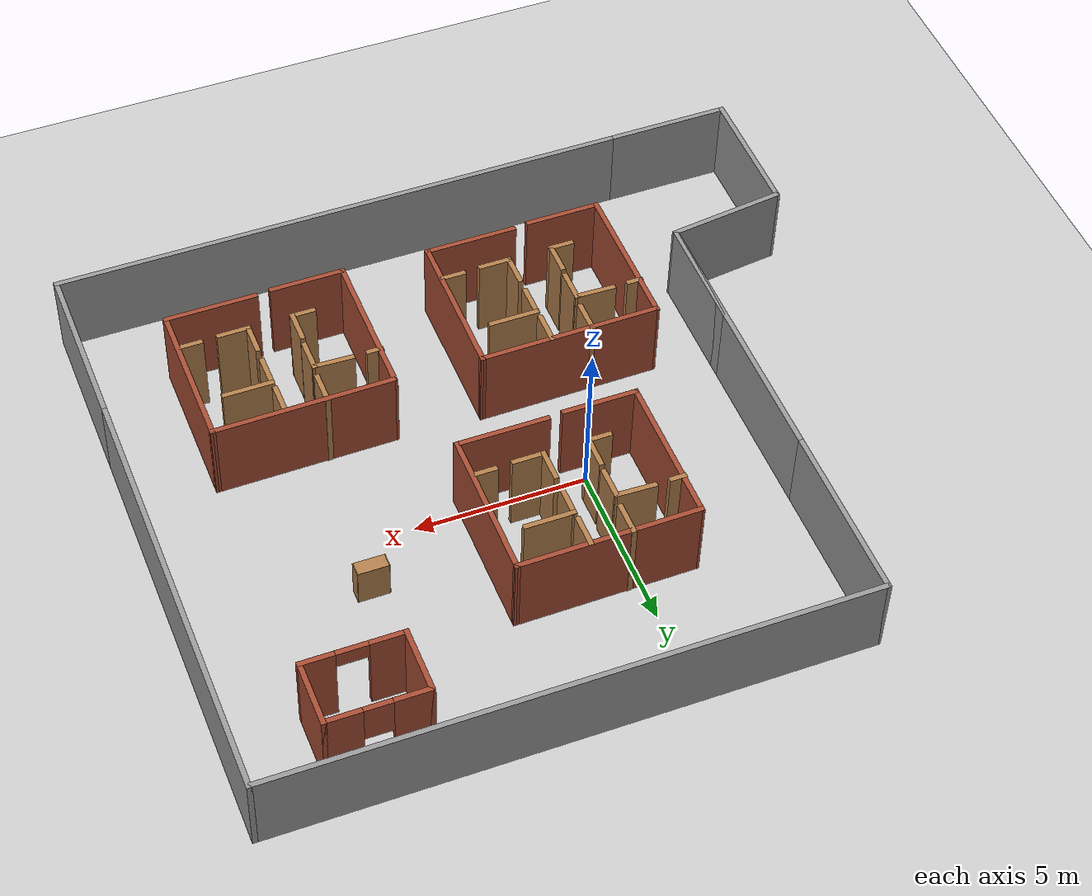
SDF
<sdf version="1.7">
 <world name="default">
  <light name="sun" type="directional">
   <pose>0 0 10 0 -0 0</pose>
   <diffuse>0.8 0.8 0.8 1</diffuse>
   <specular>0.2 0.2 0.2 1</specular>
   <attenuation>
    <range>1000</range>
    <constant>0.9</constant>
    <linear>0.01</linear>
    <quadratic>0.001</quadratic>
   </attenuation>
   <direction>-0.5 0.1 -0.9</direction>
   <spot><inner_angle>0</inner_angle><outer_angle>0</outer_angle><falloff>0</falloff></spot>
  </light>
  <model name="ground_plane">
   <static>1</static>
   <link name="link">
    <collision name="collision">
     <geometry><plane><normal>0 0 1</normal><size>100 100</size></plane></geometry>
     <surface><friction><ode><mu>100</mu><mu2>50</mu2></ode></friction></surface>
    </collision>
    <visual name="visual">
     <cast_shadows>0</cast_shadows>
     <geometry><plane><normal>0 0 1</normal><size>100 100</size></plane></geometry>
     <material>
      <script><uri>file://media/materials/scripts/gazebo.material</uri><name>Gazebo/Grey</name></script>
     </material>
    </visual>
   </link>
  </model>
  <gravity>0 0 -9.8</gravity>
  <magnetic_field>6e-06 2.3e-05 -4.2e-05</magnetic_field>
  <atmosphere type="adiabatic"/>
  <physics type="ode">
   <max_step_size>0.001</max_step_size>
   <real_time_factor>1</real_time_factor>
   <real_time_update_rate>1000</real_time_update_rate>
  </physics>
  <scene><ambient>0.4 0.4 0.4 1</ambient><background>0.7 0.7 0.7 1</background><shadows>1</shadows></scene>
  <audio><device>default</device></audio>
  <spherical_coordinates>
   <surface_model>EARTH_WGS84</surface_model>
   <latitude_deg>0</latitude_deg>
   <longitude_deg>0</longitude_deg>
   <elevation>0</elevation>
   <heading_deg>0</heading_deg>
  </spherical_coordinates>
  <model name="my_world">
   <pose>1.83197 -1.06771 0 0 -0 0</pose>
   <link name="Wall_1">
    <collision name="Wall_1_Collision">
     <geometry><box><size>3.5 0.15 2.5</size></box></geometry>
     <pose>0 0 1.25 0 -0 0</pose>
    </collision>
    <visual name="Wall_1_Visual">
     <pose>0 0 1.25 0 -0 0</pose>
     <geometry><box><size>3.5 0.15 2.5</size></box></geometry>
     <material>
      <script><uri>file://media/materials/scripts/gazebo.material</uri><name>Gazebo/Grey</name></script>
      <ambient>1 1 1 1</ambient>
     </material>
     <meta><layer>0</layer></meta>
    </visual>
    <pose>-6.87082 -2.925 0 0 -0 -1.5708</pose>
   </link>
   <link name="Wall_10">
    <collision name="Wall_10_Collision">
     <geometry><box><size>3.5238 0.15 2.5</size></box></geometry>
     <pose>0 0 1.25 0 -0 0</pose>
    </collision>
    <visual name="Wall_10_Visual">
     <pose>0 0 1.25 0 -0 0</pose>
     <geometry><box><size>3.5238 0.15 2.5</size></box></geometry>
     <material>
      <script><uri>file://media/materials/scripts/gazebo.material</uri><name>Gazebo/Grey</name></script>
      <ambient>1 1 1 1</ambient>
     </material>
     <meta><layer>0</layer></meta>
    </visual>
    <pose>-8.54582 -4.8 0 0 -0 0.11884</pose>
   </link>
   <link name="Wall_2">
    <collision name="Wall_2_Collision">
     <geometry><box><size>8.5 0.15 2.5</size></box></geometry>
     <pose>0 0 1.25 0 -0 0</pose>
    </collision>
    <visual name="Wall_2_Visual">
     <pose>0 0 1.25 0 -0 0</pose>
     <geometry><box><size>8.5 0.15 2.5</size></box></geometry>
     <material>
      <script><uri>file://media/materials/scripts/gazebo.material</uri><name>Gazebo/Grey</name></script>
      <ambient>1 1 1 1</ambient>
     </material>
     <meta><layer>0</layer></meta>
    </visual>
    <pose>-6.87082 -0.425 0 0 -0 1.5708</pose>
   </link>
   <link name="Wall_3">
    <collision name="Wall_3_Collision">
     <geometry><box><size>5.25 0.15 2.5</size></box></geometry>
     <pose>0 0 1.25 0 -0 0</pose>
    </collision>
    <visual name="Wall_3_Visual">
     <pose>0 0 1.25 0 -0 0</pose>
     <geometry><box><size>5.25 0.15 2.5</size></box></geometry>
     <material>
      <script><uri>file://media/materials/scripts/gazebo.material</uri><name>Gazebo/Grey</name></script>
      <ambient>1 1 1 1</ambient>
     </material>
     <meta><layer>0</layer></meta>
    </visual>
    <pose>-6.87082 6.3 0 0 -0 1.5708</pose>
   </link>
   <link name="Wall_4">
    <collision name="Wall_4_Collision">
     <geometry><box><size>17.25 0.15 2.5</size></box></geometry>
     <pose>0 0 1.25 0 -0 0</pose>
    </collision>
    <visual name="Wall_4_Visual">
     <pose>0 0 1.25 0 -0 0</pose>
     <geometry><box><size>17.25 0.15 2.5</size></box></geometry>
     <material>
      <script><uri>file://media/materials/scripts/gazebo.material</uri><name>Gazebo/Grey</name></script>
      <ambient>1 1 1 1</ambient>
     </material>
     <meta><layer>0</layer></meta>
    </visual>
    <pose>1.67918 8.85 0 0 -0 0</pose>
   </link>
   <link name="Wall_5">
    <collision name="Wall_5_Collision">
     <geometry><box><size>13 0.15 2.5</size></box></geometry>
     <pose>0 0 1.25 0 -0 0</pose>
    </collision>
    <visual name="Wall_5_Visual">
     <pose>0 0 1.25 0 -0 0</pose>
     <geometry><box><size>13 0.15 2.5</size></box></geometry>
     <material>
      <script><uri>file://media/materials/scripts/gazebo.material</uri><name>Gazebo/Grey</name></script>
      <ambient>1 1 1 1</ambient>
     </material>
     <meta><layer>0</layer></meta>
    </visual>
    <pose>10.2292 2.425 0 0 -0 -1.5708</pose>
   </link>
   <link name="Wall_6">
    <collision name="Wall_6_Collision">
     <geometry><box><size>5 0.15 2.5</size></box></geometry>
     <pose>0 0 1.25 0 -0 0</pose>
    </collision>
    <visual name="Wall_6_Visual">
     <pose>0 0 1.25 0 -0 0</pose>
     <geometry><box><size>5 0.15 2.5</size></box></geometry>
     <material>
      <script><uri>file://media/materials/scripts/gazebo.material</uri><name>Gazebo/Grey</name></script>
      <ambient>1 1 1 1</ambient>
     </material>
     <meta><layer>0</layer></meta>
    </visual>
    <pose>10.2292 -6.425 0 0 -0 -1.5708</pose>
   </link>
   <link name="Wall_7">
    <collision name="Wall_7_Collision">
     <geometry><box><size>17 0.15 2.5</size></box></geometry>
     <pose>0 0 1.25 0 -0 0</pose>
    </collision>
    <visual name="Wall_7_Visual">
     <pose>0 0 1.25 0 -0 0</pose>
     <geometry><box><size>17 0.15 2.5</size></box></geometry>
     <material>
      <script><uri>file://media/materials/scripts/gazebo.material</uri><name>Gazebo/Grey</name></script>
      <ambient>1 1 1 1</ambient>
     </material>
     <meta><layer>0</layer></meta>
    </visual>
    <pose>1.80418 -8.85 0 0 -0 3.14159</pose>
   </link>
   <link name="Wall_8">
    <collision name="Wall_8_Collision">
     <geometry><box><size>3.75 0.15 2.5</size></box></geometry>
     <pose>0 0 1.25 0 -0 0</pose>
    </collision>
    <visual name="Wall_8_Visual">
     <pose>0 0 1.25 0 -0 0</pose>
     <geometry><box><size>3.75 0.15 2.5</size></box></geometry>
     <material>
      <script><uri>file://media/materials/scripts/gazebo.material</uri><name>Gazebo/Grey</name></script>
      <ambient>1 1 1 1</ambient>
     </material>
     <meta><layer>0</layer></meta>
    </visual>
    <pose>-8.42082 -8.85 0 0 -0 3.14159</pose>
   </link>
   <link name="Wall_9">
    <collision name="Wall_9_Collision">
     <geometry><box><size>4 0.15 2.5</size></box></geometry>
     <pose>0 0 1.25 0 -0 0</pose>
    </collision>
    <visual name="Wall_9_Visual">
     <pose>0 0 1.25 0 -0 0</pose>
     <geometry><box><size>4 0.15 2.5</size></box></geometry>
     <material>
      <script><uri>file://media/materials/scripts/gazebo.material</uri><name>Gazebo/Grey</name></script>
      <ambient>1 1 1 1</ambient>
     </material>
     <meta><layer>0</layer></meta>
    </visual>
    <pose>-10.2208 -6.925 0 0 -0 1.5708</pose>
   </link>
   <static>1</static>
  </model>
  <model name="Untitled1">
   <pose>0.985466 1.67231 0 0 -0 0</pose>
   <link name="Wall_11">
    <collision name="Wall_11_Collision">
     <geometry><box><size>1 0.15 2.5</size></box></geometry>
     <pose>0 0 1.25 0 -0 0</pose>
    </collision>
    <visual name="Wall_11_Visual">
     <pose>0 0 1.25 0 -0 0</pose>
     <geometry><box><size>1 0.15 2.5</size></box></geometry>
     <material>
      <script><uri>file://media/materials/scripts/gazebo.material</uri><name>Gazebo/Wood</name></script>
      <ambient>1 1 1 1</ambient>
     </material>
     <meta><layer>0</layer></meta>
    </visual>
    <pose>0.550674 1.75072 0 0 -0 -1.5708</pose>
   </link>
   <link name="Wall_13">
    <collision name="Wall_13_Collision">
     <geometry><box><size>0.5 0.15 2.5</size></box></geometry>
     <pose>0 0 1.25 0 -0 0</pose>
    </collision>
    <visual name="Wall_13_Visual">
     <pose>0 0 1.25 0 -0 0</pose>
     <geometry><box><size>0.5 0.15 2.5</size></box></geometry>
     <material>
      <script><uri>file://media/materials/scripts/gazebo.material</uri><name>Gazebo/Wood</name></script>
      <ambient>1 1 1 1</ambient>
     </material>
     <meta><layer>0</layer></meta>
    </visual>
    <pose>-2.43612 0.963606 0 0 -0 0</pose>
   </link>
   <link name="Wall_2">
    <collision name="Wall_2_Collision">
     <geometry><box><size>4.5 0.15 2.5</size></box></geometry>
     <pose>0 0 1.25 0 -0 0</pose>
    </collision>
    <visual name="Wall_2_Visual">
     <pose>0 0 1.25 0 -0 0</pose>
     <geometry><box><size>4.5 0.15 2.5</size></box></geometry>
     <material>
      <script><uri>file://media/materials/scripts/gazebo.material</uri><name>Gazebo/Bricks</name></script>
      <ambient>1 1 1 1</ambient>
     </material>
     <meta><layer>0</layer></meta>
    </visual>
    <pose>-2.58858 -0.024852 0 0 -0 -1.5708</pose>
   </link>
   <link name="Wall_20">
    <collision name="Wall_20_Collision">
     <geometry><box><size>1 0.15 2.5</size></box></geometry>
     <pose>0 0 1.25 0 -0 0</pose>
    </collision>
    <visual name="Wall_20_Visual">
     <pose>0 0 1.25 0 -0 0</pose>
     <geometry><box><size>1 0.15 2.5</size></box></geometry>
     <material>
      <script><uri>file://media/materials/scripts/gazebo.material</uri><name>Gazebo/Wood</name></script>
      <ambient>1 1 1 1</ambient>
     </material>
     <meta><layer>0</layer></meta>
    </visual>
    <pose>-0.690031 0.515736 0 0 -0 -1.5708</pose>
   </link>
   <link name="Wall_22">
    <collision name="Wall_22_Collision">
     <geometry><box><size>1 0.15 2.5</size></box></geometry>
     <pose>0 0 1.25 0 -0 0</pose>
    </collision>
    <visual name="Wall_22_Visual">
     <pose>0 0 1.25 0 -0 0</pose>
     <geometry><box><size>1 0.15 2.5</size></box></geometry>
     <material>
      <script><uri>file://media/materials/scripts/gazebo.material</uri><name>Gazebo/Wood</name></script>
      <ambient>1 1 1 1</ambient>
     </material>
     <meta><layer>0</layer></meta>
    </visual>
    <pose>-0.72592 -0.630526 0 0 -0 -1.5708</pose>
   </link>
   <link name="Wall_23">
    <collision name="Wall_23_Collision">
     <geometry><box><size>0.75 0.15 2.5</size></box></geometry>
     <pose>0 0 1.25 0 -0 0</pose>
    </collision>
    <visual name="Wall_23_Visual">
     <pose>0 0 1.25 0 -0 0</pose>
     <geometry><box><size>0.75 0.15 2.5</size></box></geometry>
     <material>
      <script><uri>file://media/materials/scripts/gazebo.material</uri><name>Gazebo/Wood</name></script>
      <ambient>1 1 1 1</ambient>
     </material>
     <meta><layer>0</layer></meta>
    </visual>
    <pose>-1.02592 -1.05553 0 0 -0 3.14159</pose>
   </link>
   <link name="Wall_25">
    <collision name="Wall_25_Collision">
     <geometry><box><size>1 0.15 2.5</size></box></geometry>
     <pose>0 0 1.25 0 -0 0</pose>
    </collision>
    <visual name="Wall_25_Visual">
     <pose>0 0 1.25 0 -0 0</pose>
     <geometry><box><size>1 0.15 2.5</size></box></geometry>
     <material>
      <script><uri>file://media/materials/scripts/gazebo.material</uri><name>Gazebo/Wood</name></script>
      <ambient>1 1 1 1</ambient>
     </material>
     <meta><layer>0</layer></meta>
    </visual>
    <pose>0.574647 0.66248 0 0 -0 -1.5708</pose>
   </link>
   <link name="Wall_29">
    <collision name="Wall_29_Collision">
     <geometry><box><size>1.5 0.15 2.5</size></box></geometry>
     <pose>0 0 1.25 0 -0 0</pose>
    </collision>
    <visual name="Wall_29_Visual">
     <pose>0 0 1.25 0 -0 0</pose>
     <geometry><box><size>1.5 0.15 2.5</size></box></geometry>
     <material>
      <script><uri>file://media/materials/scripts/gazebo.material</uri><name>Gazebo/Wood</name></script>
      <ambient>1 1 1 1</ambient>
     </material>
     <meta><layer>0</layer></meta>
    </visual>
    <pose>1.24965 1.08748 0 0 -0 0</pose>
   </link>
   <link name="Wall_3">
    <collision name="Wall_3_Collision">
     <geometry><box><size>2.25 0.15 2.5</size></box></geometry>
     <pose>0 0 1.25 0 -0 0</pose>
    </collision>
    <visual name="Wall_3_Visual">
     <pose>0 0 1.25 0 -0 0</pose>
     <geometry><box><size>2.25 0.15 2.5</size></box></geometry>
     <material>
      <script><uri>file://media/materials/scripts/gazebo.material</uri><name>Gazebo/Bricks</name></script>
      <ambient>1 1 1 1</ambient>
     </material>
     <meta><layer>0</layer></meta>
    </visual>
    <pose>-1.53858 -2.19985 0 0 -0 0</pose>
   </link>
   <link name="Wall_31">
    <collision name="Wall_31_Collision">
     <geometry><box><size>0.75 0.15 2.5</size></box></geometry>
     <pose>0 0 1.25 0 -0 0</pose>
    </collision>
    <visual name="Wall_31_Visual">
     <pose>0 0 1.25 0 -0 0</pose>
     <geometry><box><size>0.75 0.15 2.5</size></box></geometry>
     <material>
      <script><uri>file://media/materials/scripts/gazebo.material</uri><name>Gazebo/Wood</name></script>
      <ambient>1 1 1 1</ambient>
     </material>
     <meta><layer>0</layer></meta>
    </visual>
    <pose>2.2633 -1.0146 0 0 -0 3.14159</pose>
   </link>
   <link name="Wall_33">
    <collision name="Wall_33_Collision">
     <geometry><box><size>1 0.15 2.5</size></box></geometry>
     <pose>0 0 1.25 0 -0 0</pose>
    </collision>
    <visual name="Wall_33_Visual">
     <pose>0 0 1.25 0 -0 0</pose>
     <geometry><box><size>1 0.15 2.5</size></box></geometry>
     <material>
      <script><uri>file://media/materials/scripts/gazebo.material</uri><name>Gazebo/Wood</name></script>
      <ambient>1 1 1 1</ambient>
     </material>
     <meta><layer>0</layer></meta>
    </visual>
    <pose>0.567085 -0.622964 0 0 -0 -1.5708</pose>
   </link>
   <link name="Wall_34">
    <collision name="Wall_34_Collision">
     <geometry><box><size>1 0.15 2.5</size></box></geometry>
     <pose>0 0 1.25 0 -0 0</pose>
    </collision>
    <visual name="Wall_34_Visual">
     <pose>0 0 1.25 0 -0 0</pose>
     <geometry><box><size>1 0.15 2.5</size></box></geometry>
     <material>
      <script><uri>file://media/materials/scripts/gazebo.material</uri><name>Gazebo/Wood</name></script>
      <ambient>1 1 1 1</ambient>
     </material>
     <meta><layer>0</layer></meta>
    </visual>
    <pose>0.992085 -1.04796 0 0 -0 0</pose>
   </link>
   <link name="Wall_36">
    <collision name="Wall_36_Collision">
     <geometry><box><size>1.23299 0.15 2.5</size></box></geometry>
     <pose>0 0 1.25 0 -0 0</pose>
    </collision>
    <visual name="Wall_36_Visual">
     <pose>0 0 1.25 0 -0 0</pose>
     <geometry><box><size>1.23299 0.15 2.5</size></box></geometry>
     <material>
      <script><uri>file://media/materials/scripts/gazebo.material</uri><name>Gazebo/Wood</name></script>
      <ambient>1 1 1 1</ambient>
     </material>
     <meta><layer>0</layer></meta>
    </visual>
    <pose>-1.23117 0.960239 0 0 -0 -0.036026</pose>
   </link>
   <link name="Wall_5">
    <collision name="Wall_5_Collision">
     <geometry><box><size>2.75 0.15 2.5</size></box></geometry>
     <pose>0 0 1.25 0 -0 0</pose>
    </collision>
    <visual name="Wall_5_Visual">
     <pose>0 0 1.25 0 -0 0</pose>
     <geometry><box><size>2.75 0.15 2.5</size></box></geometry>
     <material>
      <script><uri>file://media/materials/scripts/gazebo.material</uri><name>Gazebo/Bricks</name></script>
      <ambient>1 1 1 1</ambient>
     </material>
     <meta><layer>0</layer></meta>
    </visual>
    <pose>1.31042 -2.15085 0 0 -0 0</pose>
   </link>
   <link name="Wall_6">
    <collision name="Wall_6_Collision">
     <geometry><box><size>4.5 0.15 2.5</size></box></geometry>
     <pose>0 0 1.25 0 -0 0</pose>
    </collision>
    <visual name="Wall_6_Visual">
     <pose>0 0 1.25 0 -0 0</pose>
     <geometry><box><size>4.5 0.15 2.5</size></box></geometry>
     <material>
      <script><uri>file://media/materials/scripts/gazebo.material</uri><name>Gazebo/Bricks</name></script>
      <ambient>1 1 1 1</ambient>
     </material>
     <meta><layer>0</layer></meta>
    </visual>
    <pose>2.61042 0.024148 0 0 -0 1.5708</pose>
   </link>
   <link name="Wall_7">
    <collision name="Wall_7_Collision">
     <geometry><box><size>5.34923 0.15 2.5</size></box></geometry>
     <pose>0 0 1.25 0 -0 0</pose>
    </collision>
    <visual name="Wall_7_Visual">
     <pose>0 0 1.25 0 -0 0</pose>
     <geometry><box><size>5.34923 0.15 2.5</size></box></geometry>
     <material>
      <script><uri>file://media/materials/scripts/gazebo.material</uri><name>Gazebo/Bricks</name></script>
      <ambient>1 1 1 1</ambient>
     </material>
     <meta><layer>0</layer></meta>
    </visual>
    <pose>0.010918 2.17465 0 0 -0 -3.13217</pose>
   </link>
   <link name="Wall_9">
    <collision name="Wall_9_Collision">
     <geometry><box><size>1 0.15 2.5</size></box></geometry>
     <pose>0 0 1.25 0 -0 0</pose>
    </collision>
    <visual name="Wall_9_Visual">
     <pose>0 0 1.25 0 -0 0</pose>
     <geometry><box><size>1 0.15 2.5</size></box></geometry>
     <material>
      <script><uri>file://media/materials/scripts/gazebo.material</uri><name>Gazebo/Wood</name></script>
      <ambient>1 1 1 1</ambient>
     </material>
     <meta><layer>0</layer></meta>
    </visual>
    <pose>-0.645082 1.75965 0 0 -0 -1.5708</pose>
   </link>
   <static>1</static>
  </model>
  <model name="Untitled1_0">
   <pose>6.96186 -5.3903 0 0 -0 0</pose>
   <link name="Wall_11">
    <collision name="Wall_11_Collision">
     <geometry><box><size>1 0.15 2.5</size></box></geometry>
     <pose>0 0 1.25 0 -0 0</pose>
    </collision>
    <visual name="Wall_11_Visual">
     <pose>0 0 1.25 0 -0 0</pose>
     <geometry><box><size>1 0.15 2.5</size></box></geometry>
     <material>
      <script><uri>file://media/materials/scripts/gazebo.material</uri><name>Gazebo/Wood</name></script>
      <ambient>1 1 1 1</ambient>
     </material>
     <meta><layer>0</layer></meta>
    </visual>
    <pose>0.550674 1.75072 0 0 -0 -1.5708</pose>
   </link>
   <link name="Wall_13">
    <collision name="Wall_13_Collision">
     <geometry><box><size>0.5 0.15 2.5</size></box></geometry>
     <pose>0 0 1.25 0 -0 0</pose>
    </collision>
    <visual name="Wall_13_Visual">
     <pose>0 0 1.25 0 -0 0</pose>
     <geometry><box><size>0.5 0.15 2.5</size></box></geometry>
     <material>
      <script><uri>file://media/materials/scripts/gazebo.material</uri><name>Gazebo/Wood</name></script>
      <ambient>1 1 1 1</ambient>
     </material>
     <meta><layer>0</layer></meta>
    </visual>
    <pose>-2.43612 0.963606 0 0 -0 0</pose>
   </link>
   <link name="Wall_2">
    <collision name="Wall_2_Collision">
     <geometry><box><size>4.5 0.15 2.5</size></box></geometry>
     <pose>0 0 1.25 0 -0 0</pose>
    </collision>
    <visual name="Wall_2_Visual">
     <pose>0 0 1.25 0 -0 0</pose>
     <geometry><box><size>4.5 0.15 2.5</size></box></geometry>
     <material>
      <script><uri>file://media/materials/scripts/gazebo.material</uri><name>Gazebo/Bricks</name></script>
      <ambient>1 1 1 1</ambient>
     </material>
     <meta><layer>0</layer></meta>
    </visual>
    <pose>-2.58858 -0.024852 0 0 -0 -1.5708</pose>
   </link>
   <link name="Wall_20">
    <collision name="Wall_20_Collision">
     <geometry><box><size>1 0.15 2.5</size></box></geometry>
     <pose>0 0 1.25 0 -0 0</pose>
    </collision>
    <visual name="Wall_20_Visual">
     <pose>0 0 1.25 0 -0 0</pose>
     <geometry><box><size>1 0.15 2.5</size></box></geometry>
     <material>
      <script><uri>file://media/materials/scripts/gazebo.material</uri><name>Gazebo/Wood</name></script>
      <ambient>1 1 1 1</ambient>
     </material>
     <meta><layer>0</layer></meta>
    </visual>
    <pose>-0.690031 0.515736 0 0 -0 -1.5708</pose>
   </link>
   <link name="Wall_22">
    <collision name="Wall_22_Collision">
     <geometry><box><size>1 0.15 2.5</size></box></geometry>
     <pose>0 0 1.25 0 -0 0</pose>
    </collision>
    <visual name="Wall_22_Visual">
     <pose>0 0 1.25 0 -0 0</pose>
     <geometry><box><size>1 0.15 2.5</size></box></geometry>
     <material>
      <script><uri>file://media/materials/scripts/gazebo.material</uri><name>Gazebo/Wood</name></script>
      <ambient>1 1 1 1</ambient>
     </material>
     <meta><layer>0</layer></meta>
    </visual>
    <pose>-0.72592 -0.630526 0 0 -0 -1.5708</pose>
   </link>
   <link name="Wall_23">
    <collision name="Wall_23_Collision">
     <geometry><box><size>0.75 0.15 2.5</size></box></geometry>
     <pose>0 0 1.25 0 -0 0</pose>
    </collision>
    <visual name="Wall_23_Visual">
     <pose>0 0 1.25 0 -0 0</pose>
     <geometry><box><size>0.75 0.15 2.5</size></box></geometry>
     <material>
      <script><uri>file://media/materials/scripts/gazebo.material</uri><name>Gazebo/Wood</name></script>
      <ambient>1 1 1 1</ambient>
     </material>
     <meta><layer>0</layer></meta>
    </visual>
    <pose>-1.02592 -1.05553 0 0 -0 3.14159</pose>
   </link>
   <link name="Wall_25">
    <collision name="Wall_25_Collision">
     <geometry><box><size>1 0.15 2.5</size></box></geometry>
     <pose>0 0 1.25 0 -0 0</pose>
    </collision>
    <visual name="Wall_25_Visual">
     <pose>0 0 1.25 0 -0 0</pose>
     <geometry><box><size>1 0.15 2.5</size></box></geometry>
     <material>
      <script><uri>file://media/materials/scripts/gazebo.material</uri><name>Gazebo/Wood</name></script>
      <ambient>1 1 1 1</ambient>
     </material>
     <meta><layer>0</layer></meta>
    </visual>
    <pose>0.574647 0.66248 0 0 -0 -1.5708</pose>
   </link>
   <link name="Wall_29">
    <collision name="Wall_29_Collision">
     <geometry><box><size>1.5 0.15 2.5</size></box></geometry>
     <pose>0 0 1.25 0 -0 0</pose>
    </collision>
    <visual name="Wall_29_Visual">
     <pose>0 0 1.25 0 -0 0</pose>
     <geometry><box><size>1.5 0.15 2.5</size></box></geometry>
     <material>
      <script><uri>file://media/materials/scripts/gazebo.material</uri><name>Gazebo/Wood</name></script>
      <ambient>1 1 1 1</ambient>
     </material>
     <meta><layer>0</layer></meta>
    </visual>
    <pose>1.24965 1.08748 0 0 -0 0</pose>
   </link>
   <link name="Wall_3">
    <collision name="Wall_3_Collision">
     <geometry><box><size>2.25 0.15 2.5</size></box></geometry>
     <pose>0 0 1.25 0 -0 0</pose>
    </collision>
    <visual name="Wall_3_Visual">
     <pose>0 0 1.25 0 -0 0</pose>
     <geometry><box><size>2.25 0.15 2.5</size></box></geometry>
     <material>
      <script><uri>file://media/materials/scripts/gazebo.material</uri><name>Gazebo/Bricks</name></script>
      <ambient>1 1 1 1</ambient>
     </material>
     <meta><layer>0</layer></meta>
    </visual>
    <pose>-1.53858 -2.19985 0 0 -0 0</pose>
   </link>
   <link name="Wall_31">
    <collision name="Wall_31_Collision">
     <geometry><box><size>0.75 0.15 2.5</size></box></geometry>
     <pose>0 0 1.25 0 -0 0</pose>
    </collision>
    <visual name="Wall_31_Visual">
     <pose>0 0 1.25 0 -0 0</pose>
     <geometry><box><size>0.75 0.15 2.5</size></box></geometry>
     <material>
      <script><uri>file://media/materials/scripts/gazebo.material</uri><name>Gazebo/Wood</name></script>
      <ambient>1 1 1 1</ambient>
     </material>
     <meta><layer>0</layer></meta>
    </visual>
    <pose>2.2633 -1.0146 0 0 -0 3.14159</pose>
   </link>
   <link name="Wall_33">
    <collision name="Wall_33_Collision">
     <geometry><box><size>1 0.15 2.5</size></box></geometry>
     <pose>0 0 1.25 0 -0 0</pose>
    </collision>
    <visual name="Wall_33_Visual">
     <pose>0 0 1.25 0 -0 0</pose>
     <geometry><box><size>1 0.15 2.5</size></box></geometry>
     <material>
      <script><uri>file://media/materials/scripts/gazebo.material</uri><name>Gazebo/Wood</name></script>
      <ambient>1 1 1 1</ambient>
     </material>
     <meta><layer>0</layer></meta>
    </visual>
    <pose>0.567085 -0.622964 0 0 -0 -1.5708</pose>
   </link>
   <link name="Wall_34">
    <collision name="Wall_34_Collision">
     <geometry><box><size>1 0.15 2.5</size></box></geometry>
     <pose>0 0 1.25 0 -0 0</pose>
    </collision>
    <visual name="Wall_34_Visual">
     <pose>0 0 1.25 0 -0 0</pose>
     <geometry><box><size>1 0.15 2.5</size></box></geometry>
     <material>
      <script><uri>file://media/materials/scripts/gazebo.material</uri><name>Gazebo/Wood</name></script>
      <ambient>1 1 1 1</ambient>
     </material>
     <meta><layer>0</layer></meta>
    </visual>
    <pose>0.992085 -1.04796 0 0 -0 0</pose>
   </link>
   <link name="Wall_36">
    <collision name="Wall_36_Collision">
     <geometry><box><size>1.23299 0.15 2.5</size></box></geometry>
     <pose>0 0 1.25 0 -0 0</pose>
    </collision>
    <visual name="Wall_36_Visual">
     <pose>0 0 1.25 0 -0 0</pose>
     <geometry><box><size>1.23299 0.15 2.5</size></box></geometry>
     <material>
      <script><uri>file://media/materials/scripts/gazebo.material</uri><name>Gazebo/Wood</name></script>
      <ambient>1 1 1 1</ambient>
     </material>
     <meta><layer>0</layer></meta>
    </visual>
    <pose>-1.23117 0.960239 0 0 -0 -0.036026</pose>
   </link>
   <link name="Wall_5">
    <collision name="Wall_5_Collision">
     <geometry><box><size>2.75 0.15 2.5</size></box></geometry>
     <pose>0 0 1.25 0 -0 0</pose>
    </collision>
    <visual name="Wall_5_Visual">
     <pose>0 0 1.25 0 -0 0</pose>
     <geometry><box><size>2.75 0.15 2.5</size></box></geometry>
     <material>
      <script><uri>file://media/materials/scripts/gazebo.material</uri><name>Gazebo/Bricks</name></script>
      <ambient>1 1 1 1</ambient>
     </material>
     <meta><layer>0</layer></meta>
    </visual>
    <pose>1.31042 -2.15085 0 0 -0 0</pose>
   </link>
   <link name="Wall_6">
    <collision name="Wall_6_Collision">
     <geometry><box><size>4.5 0.15 2.5</size></box></geometry>
     <pose>0 0 1.25 0 -0 0</pose>
    </collision>
    <visual name="Wall_6_Visual">
     <pose>0 0 1.25 0 -0 0</pose>
     <geometry><box><size>4.5 0.15 2.5</size></box></geometry>
     <material>
      <script><uri>file://media/materials/scripts/gazebo.material</uri><name>Gazebo/Bricks</name></script>
      <ambient>1 1 1 1</ambient>
     </material>
     <meta><layer>0</layer></meta>
    </visual>
    <pose>2.61042 0.024148 0 0 -0 1.5708</pose>
   </link>
   <link name="Wall_7">
    <collision name="Wall_7_Collision">
     <geometry><box><size>5.34923 0.15 2.5</size></box></geometry>
     <pose>0 0 1.25 0 -0 0</pose>
    </collision>
    <visual name="Wall_7_Visual">
     <pose>0 0 1.25 0 -0 0</pose>
     <geometry><box><size>5.34923 0.15 2.5</size></box></geometry>
     <material>
      <script><uri>file://media/materials/scripts/gazebo.material</uri><name>Gazebo/Bricks</name></script>
      <ambient>1 1 1 1</ambient>
     </material>
     <meta><layer>0</layer></meta>
    </visual>
    <pose>0.010918 2.17465 0 0 -0 -3.13217</pose>
   </link>
   <link name="Wall_9">
    <collision name="Wall_9_Collision">
     <geometry><box><size>1 0.15 2.5</size></box></geometry>
     <pose>0 0 1.25 0 -0 0</pose>
    </collision>
    <visual name="Wall_9_Visual">
     <pose>0 0 1.25 0 -0 0</pose>
     <geometry><box><size>1 0.15 2.5</size></box></geometry>
     <material>
      <script><uri>file://media/materials/scripts/gazebo.material</uri><name>Gazebo/Wood</name></script>
      <ambient>1 1 1 1</ambient>
     </material>
     <meta><layer>0</layer></meta>
    </visual>
    <pose>-0.645082 1.75965 0 0 -0 -1.5708</pose>
   </link>
   <static>1</static>
  </model>
  <model name="Untitled1_1">
   <pose>-0.750092 -5.30381 0 0 -0 0</pose>
   <link name="Wall_11">
    <collision name="Wall_11_Collision">
     <geometry><box><size>1 0.15 2.5</size></box></geometry>
     <pose>0 0 1.25 0 -0 0</pose>
    </collision>
    <visual name="Wall_11_Visual">
     <pose>0 0 1.25 0 -0 0</pose>
     <geometry><box><size>1 0.15 2.5</size></box></geometry>
     <material>
      <script><uri>file://media/materials/scripts/gazebo.material</uri><name>Gazebo/Wood</name></script>
      <ambient>1 1 1 1</ambient>
     </material>
     <meta><layer>0</layer></meta>
    </visual>
    <pose>0.550674 1.75072 0 0 -0 -1.5708</pose>
   </link>
   <link name="Wall_13">
    <collision name="Wall_13_Collision">
     <geometry><box><size>0.5 0.15 2.5</size></box></geometry>
     <pose>0 0 1.25 0 -0 0</pose>
    </collision>
    <visual name="Wall_13_Visual">
     <pose>0 0 1.25 0 -0 0</pose>
     <geometry><box><size>0.5 0.15 2.5</size></box></geometry>
     <material>
      <script><uri>file://media/materials/scripts/gazebo.material</uri><name>Gazebo/Wood</name></script>
      <ambient>1 1 1 1</ambient>
     </material>
     <meta><layer>0</layer></meta>
    </visual>
    <pose>-2.43612 0.963606 0 0 -0 0</pose>
   </link>
   <link name="Wall_2">
    <collision name="Wall_2_Collision">
     <geometry><box><size>4.5 0.15 2.5</size></box></geometry>
     <pose>0 0 1.25 0 -0 0</pose>
    </collision>
    <visual name="Wall_2_Visual">
     <pose>0 0 1.25 0 -0 0</pose>
     <geometry><box><size>4.5 0.15 2.5</size></box></geometry>
     <material>
      <script><uri>file://media/materials/scripts/gazebo.material</uri><name>Gazebo/Bricks</name></script>
      <ambient>1 1 1 1</ambient>
     </material>
     <meta><layer>0</layer></meta>
    </visual>
    <pose>-2.58858 -0.024852 0 0 -0 -1.5708</pose>
   </link>
   <link name="Wall_20">
    <collision name="Wall_20_Collision">
     <geometry><box><size>1 0.15 2.5</size></box></geometry>
     <pose>0 0 1.25 0 -0 0</pose>
    </collision>
    <visual name="Wall_20_Visual">
     <pose>0 0 1.25 0 -0 0</pose>
     <geometry><box><size>1 0.15 2.5</size></box></geometry>
     <material>
      <script><uri>file://media/materials/scripts/gazebo.material</uri><name>Gazebo/Wood</name></script>
      <ambient>1 1 1 1</ambient>
     </material>
     <meta><layer>0</layer></meta>
    </visual>
    <pose>-0.690031 0.515736 0 0 -0 -1.5708</pose>
   </link>
   <link name="Wall_22">
    <collision name="Wall_22_Collision">
     <geometry><box><size>1 0.15 2.5</size></box></geometry>
     <pose>0 0 1.25 0 -0 0</pose>
    </collision>
    <visual name="Wall_22_Visual">
     <pose>0 0 1.25 0 -0 0</pose>
     <geometry><box><size>1 0.15 2.5</size></box></geometry>
     <material>
      <script><uri>file://media/materials/scripts/gazebo.material</uri><name>Gazebo/Wood</name></script>
      <ambient>1 1 1 1</ambient>
     </material>
     <meta><layer>0</layer></meta>
    </visual>
    <pose>-0.72592 -0.630526 0 0 -0 -1.5708</pose>
   </link>
   <link name="Wall_23">
    <collision name="Wall_23_Collision">
     <geometry><box><size>0.75 0.15 2.5</size></box></geometry>
     <pose>0 0 1.25 0 -0 0</pose>
    </collision>
    <visual name="Wall_23_Visual">
     <pose>0 0 1.25 0 -0 0</pose>
     <geometry><box><size>0.75 0.15 2.5</size></box></geometry>
     <material>
      <script><uri>file://media/materials/scripts/gazebo.material</uri><name>Gazebo/Wood</name></script>
      <ambient>1 1 1 1</ambient>
     </material>
     <meta><layer>0</layer></meta>
    </visual>
    <pose>-1.02592 -1.05553 0 0 -0 3.14159</pose>
   </link>
   <link name="Wall_25">
    <collision name="Wall_25_Collision">
     <geometry><box><size>1 0.15 2.5</size></box></geometry>
     <pose>0 0 1.25 0 -0 0</pose>
    </collision>
    <visual name="Wall_25_Visual">
     <pose>0 0 1.25 0 -0 0</pose>
     <geometry><box><size>1 0.15 2.5</size></box></geometry>
     <material>
      <script><uri>file://media/materials/scripts/gazebo.material</uri><name>Gazebo/Wood</name></script>
      <ambient>1 1 1 1</ambient>
     </material>
     <meta><layer>0</layer></meta>
    </visual>
    <pose>0.574647 0.66248 0 0 -0 -1.5708</pose>
   </link>
   <link name="Wall_29">
    <collision name="Wall_29_Collision">
     <geometry><box><size>1.5 0.15 2.5</size></box></geometry>
     <pose>0 0 1.25 0 -0 0</pose>
    </collision>
    <visual name="Wall_29_Visual">
     <pose>0 0 1.25 0 -0 0</pose>
     <geometry><box><size>1.5 0.15 2.5</size></box></geometry>
     <material>
      <script><uri>file://media/materials/scripts/gazebo.material</uri><name>Gazebo/Wood</name></script>
      <ambient>1 1 1 1</ambient>
     </material>
     <meta><layer>0</layer></meta>
    </visual>
    <pose>1.24965 1.08748 0 0 -0 0</pose>
   </link>
   <link name="Wall_3">
    <collision name="Wall_3_Collision">
     <geometry><box><size>2.25 0.15 2.5</size></box></geometry>
     <pose>0 0 1.25 0 -0 0</pose>
    </collision>
    <visual name="Wall_3_Visual">
     <pose>0 0 1.25 0 -0 0</pose>
     <geometry><box><size>2.25 0.15 2.5</size></box></geometry>
     <material>
      <script><uri>file://media/materials/scripts/gazebo.material</uri><name>Gazebo/Bricks</name></script>
      <ambient>1 1 1 1</ambient>
     </material>
     <meta><layer>0</layer></meta>
    </visual>
    <pose>-1.53858 -2.19985 0 0 -0 0</pose>
   </link>
   <link name="Wall_31">
    <collision name="Wall_31_Collision">
     <geometry><box><size>0.75 0.15 2.5</size></box></geometry>
     <pose>0 0 1.25 0 -0 0</pose>
    </collision>
    <visual name="Wall_31_Visual">
     <pose>0 0 1.25 0 -0 0</pose>
     <geometry><box><size>0.75 0.15 2.5</size></box></geometry>
     <material>
      <script><uri>file://media/materials/scripts/gazebo.material</uri><name>Gazebo/Wood</name></script>
      <ambient>1 1 1 1</ambient>
     </material>
     <meta><layer>0</layer></meta>
    </visual>
    <pose>2.2633 -1.0146 0 0 -0 3.14159</pose>
   </link>
   <link name="Wall_33">
    <collision name="Wall_33_Collision">
     <geometry><box><size>1 0.15 2.5</size></box></geometry>
     <pose>0 0 1.25 0 -0 0</pose>
    </collision>
    <visual name="Wall_33_Visual">
     <pose>0 0 1.25 0 -0 0</pose>
     <geometry><box><size>1 0.15 2.5</size></box></geometry>
     <material>
      <script><uri>file://media/materials/scripts/gazebo.material</uri><name>Gazebo/Wood</name></script>
      <ambient>1 1 1 1</ambient>
     </material>
     <meta><layer>0</layer></meta>
    </visual>
    <pose>0.567085 -0.622964 0 0 -0 -1.5708</pose>
   </link>
   <link name="Wall_34">
    <collision name="Wall_34_Collision">
     <geometry><box><size>1 0.15 2.5</size></box></geometry>
     <pose>0 0 1.25 0 -0 0</pose>
    </collision>
    <visual name="Wall_34_Visual">
     <pose>0 0 1.25 0 -0 0</pose>
     <geometry><box><size>1 0.15 2.5</size></box></geometry>
     <material>
      <script><uri>file://media/materials/scripts/gazebo.material</uri><name>Gazebo/Wood</name></script>
      <ambient>1 1 1 1</ambient>
     </material>
     <meta><layer>0</layer></meta>
    </visual>
    <pose>0.992085 -1.04796 0 0 -0 0</pose>
   </link>
   <link name="Wall_36">
    <collision name="Wall_36_Collision">
     <geometry><box><size>1.23299 0.15 2.5</size></box></geometry>
     <pose>0 0 1.25 0 -0 0</pose>
    </collision>
    <visual name="Wall_36_Visual">
     <pose>0 0 1.25 0 -0 0</pose>
     <geometry><box><size>1.23299 0.15 2.5</size></box></geometry>
     <material>
      <script><uri>file://media/materials/scripts/gazebo.material</uri><name>Gazebo/Wood</name></script>
      <ambient>1 1 1 1</ambient>
     </material>
     <meta><layer>0</layer></meta>
    </visual>
    <pose>-1.23117 0.960239 0 0 -0 -0.036026</pose>
   </link>
   <link name="Wall_5">
    <collision name="Wall_5_Collision">
     <geometry><box><size>2.75 0.15 2.5</size></box></geometry>
     <pose>0 0 1.25 0 -0 0</pose>
    </collision>
    <visual name="Wall_5_Visual">
     <pose>0 0 1.25 0 -0 0</pose>
     <geometry><box><size>2.75 0.15 2.5</size></box></geometry>
     <material>
      <script><uri>file://media/materials/scripts/gazebo.material</uri><name>Gazebo/Bricks</name></script>
      <ambient>1 1 1 1</ambient>
     </material>
     <meta><layer>0</layer></meta>
    </visual>
    <pose>1.31042 -2.15085 0 0 -0 0</pose>
   </link>
   <link name="Wall_6">
    <collision name="Wall_6_Collision">
     <geometry><box><size>4.5 0.15 2.5</size></box></geometry>
     <pose>0 0 1.25 0 -0 0</pose>
    </collision>
    <visual name="Wall_6_Visual">
     <pose>0 0 1.25 0 -0 0</pose>
     <geometry><box><size>4.5 0.15 2.5</size></box></geometry>
     <material>
      <script><uri>file://media/materials/scripts/gazebo.material</uri><name>Gazebo/Bricks</name></script>
      <ambient>1 1 1 1</ambient>
     </material>
     <meta><layer>0</layer></meta>
    </visual>
    <pose>2.61042 0.024148 0 0 -0 1.5708</pose>
   </link>
   <link name="Wall_7">
    <collision name="Wall_7_Collision">
     <geometry><box><size>5.34923 0.15 2.5</size></box></geometry>
     <pose>0 0 1.25 0 -0 0</pose>
    </collision>
    <visual name="Wall_7_Visual">
     <pose>0 0 1.25 0 -0 0</pose>
     <geometry><box><size>5.34923 0.15 2.5</size></box></geometry>
     <material>
      <script><uri>file://media/materials/scripts/gazebo.material</uri><name>Gazebo/Bricks</name></script>
      <ambient>1 1 1 1</ambient>
     </material>
     <meta><layer>0</layer></meta>
    </visual>
    <pose>0.010918 2.17465 0 0 -0 -3.13217</pose>
   </link>
   <link name="Wall_9">
    <collision name="Wall_9_Collision">
     <geometry><box><size>1 0.15 2.5</size></box></geometry>
     <pose>0 0 1.25 0 -0 0</pose>
    </collision>
    <visual name="Wall_9_Visual">
     <pose>0 0 1.25 0 -0 0</pose>
     <geometry><box><size>1 0.15 2.5</size></box></geometry>
     <material>
      <script><uri>file://media/materials/scripts/gazebo.material</uri><name>Gazebo/Wood</name></script>
      <ambient>1 1 1 1</ambient>
     </material>
     <meta><layer>0</layer></meta>
    </visual>
    <pose>-0.645082 1.75965 0 0 -0 -1.5708</pose>
   </link>
   <static>1</static>
  </model>
  <model name="test_world">
   <pose>8.37125 2.90424 0 0 -0 0</pose>
   <link name="Wall_6">
    <pose>-0 1.92238 0 0 -0 3.14159</pose>
    <visual name="Wall_6_Visual_0">
     <pose>-0.993891 0 1.25 0 -0 0</pose>
     <geometry><box><size>1.01222 0.15 2.5</size></box></geometry>
     <material>
      <script><uri>file://media/materials/scripts/gazebo.material</uri><name>Gazebo/Bricks</name></script>
      <ambient>1 1 1 1</ambient>
     </material>
     <meta><layer>0</layer></meta>
    </visual>
    <collision name="Wall_6_Collision_0">
     <geometry><box><size>1.01222 0.15 2.5</size></box></geometry>
     <pose>-0.993891 0 1.25 0 -0 0</pose>
    </collision>
    <visual name="Wall_6_Visual_1">
     <pose>0.956109 0 1.25 0 -0 0</pose>
     <geometry><box><size>1.08778 0.15 2.5</size></box></geometry>
     <material>
      <script><uri>file://media/materials/scripts/gazebo.material</uri><name>Gazebo/Bricks</name></script>
      <ambient>1 1 1 1</ambient>
     </material>
     <meta><layer>0</layer></meta>
    </visual>
    <collision name="Wall_6_Collision_1">
     <geometry><box><size>1.08778 0.15 2.5</size></box></geometry>
     <pose>0.956109 0 1.25 0 -0 0</pose>
    </collision>
    <visual name="Wall_6_Visual_2">
     <pose>-0.037783 0 2.25 0 -0 0</pose>
     <geometry><box><size>0.9 0.15 0.5</size></box></geometry>
     <material>
      <script><uri>file://media/materials/scripts/gazebo.material</uri><name>Gazebo/Bricks</name></script>
      <ambient>1 1 1 1</ambient>
     </material>
     <meta><layer>0</layer></meta>
    </visual>
    <collision name="Wall_6_Collision_2">
     <geometry><box><size>0.9 0.15 0.5</size></box></geometry>
     <pose>-0.037783 0 2.25 0 -0 0</pose>
    </collision>
   </link>
   <link name="Wall_7">
    <collision name="Wall_7_Collision">
     <geometry><box><size>2 0.15 2.5</size></box></geometry>
     <pose>0 0 1.25 0 -0 0</pose>
    </collision>
    <visual name="Wall_7_Visual">
     <pose>0 0 1.25 0 -0 0</pose>
     <geometry><box><size>2 0.15 2.5</size></box></geometry>
     <material>
      <script><uri>file://media/materials/scripts/gazebo.material</uri><name>Gazebo/Bricks</name></script>
      <ambient>1 1 1 1</ambient>
     </material>
     <meta><layer>0</layer></meta>
    </visual>
    <pose>-1.425 2.84738 0 0 -0 1.5708</pose>
   </link>
   <link name="Wall_8">
    <pose>-0 3.77238 0 0 -0 0</pose>
    <visual name="Wall_8_Visual_0">
     <pose>-0.950946 0 1.25 0 -0 0</pose>
     <geometry><box><size>1.09811 0.15 2.5</size></box></geometry>
     <material>
      <script><uri>file://media/materials/scripts/gazebo.material</uri><name>Gazebo/Bricks</name></script>
      <ambient>1 1 1 1</ambient>
     </material>
     <meta><layer>0</layer></meta>
    </visual>
    <collision name="Wall_8_Collision_0">
     <geometry><box><size>1.09811 0.15 2.5</size></box></geometry>
     <pose>-0.950946 0 1.25 0 -0 0</pose>
    </collision>
    <visual name="Wall_8_Visual_1">
     <pose>0.549054 0 0.25 0 -0 0</pose>
     <geometry><box><size>1.90189 0.15 0.5</size></box></geometry>
     <material>
      <script><uri>file://media/materials/scripts/gazebo.material</uri><name>Gazebo/Bricks</name></script>
      <ambient>1 1 1 1</ambient>
     </material>
     <meta><layer>0</layer></meta>
    </visual>
    <collision name="Wall_8_Collision_1">
     <geometry><box><size>1.90189 0.15 0.5</size></box></geometry>
     <pose>0.549054 0 0.25 0 -0 0</pose>
    </collision>
    <visual name="Wall_8_Visual_2">
     <pose>0.949054 0 1.5 0 -0 0</pose>
     <geometry><box><size>1.10189 0.15 2</size></box></geometry>
     <material>
      <script><uri>file://media/materials/scripts/gazebo.material</uri><name>Gazebo/Bricks</name></script>
      <ambient>1 1 1 1</ambient>
     </material>
     <meta><layer>0</layer></meta>
    </visual>
    <collision name="Wall_8_Collision_2">
     <geometry><box><size>1.10189 0.15 2</size></box></geometry>
     <pose>0.949054 0 1.5 0 -0 0</pose>
    </collision>
    <visual name="Wall_8_Visual_3">
     <pose>-0.001892 0 1.9 0 -0 0</pose>
     <geometry><box><size>0.8 0.15 1.2</size></box></geometry>
     <material>
      <script><uri>file://media/materials/scripts/gazebo.material</uri><name>Gazebo/Bricks</name></script>
      <ambient>1 1 1 1</ambient>
     </material>
     <meta><layer>0</layer></meta>
    </visual>
    <collision name="Wall_8_Collision_3">
     <geometry><box><size>0.8 0.15 1.2</size></box></geometry>
     <pose>-0.001892 0 1.9 0 -0 0</pose>
    </collision>
   </link>
   <link name="Wall_9">
    <collision name="Wall_9_Collision">
     <geometry><box><size>2 0.15 2.5</size></box></geometry>
     <pose>0 0 1.25 0 -0 0</pose>
    </collision>
    <visual name="Wall_9_Visual">
     <pose>0 0 1.25 0 -0 0</pose>
     <geometry><box><size>2 0.15 2.5</size></box></geometry>
     <material>
      <script><uri>file://media/materials/scripts/gazebo.material</uri><name>Gazebo/Bricks</name></script>
      <ambient>1 1 1 1</ambient>
     </material>
     <meta><layer>0</layer></meta>
    </visual>
    <pose>1.425 2.84738 0 0 -0 -1.5708</pose>
   </link>
   <static>1</static>
  </model>
  <model name="bookshelf">
   <static>1</static>
   <link name="link">
    <inertial><mass>1</mass></inertial>
    <collision name="back">
     <pose>0 0.005 0.6 0 -0 0</pose>
     <geometry><box><size>0.9 0.01 1.2</size></box></geometry>
    </collision>
    <visual name="visual1">
     <pose>0 0.005 0.6 0 -0 0</pose>
     <geometry><box><size>0.9 0.01 1.2</size></box></geometry>
     <material>
      <script><uri>file://media/materials/scripts/gazebo.material</uri><name>Gazebo/Wood</name></script>
     </material>
    </visual>
    <collision name="left_side">
     <pose>0.45 -0.195 0.6 0 -0 0</pose>
     <geometry><box><size>0.02 0.4 1.2</size></box></geometry>
    </collision>
    <visual name="visual2">
     <pose>0.45 -0.195 0.6 0 -0 0</pose>
     <geometry><box><size>0.02 0.4 1.2</size></box></geometry>
     <material>
      <script><uri>file://media/materials/scripts/gazebo.material</uri><name>Gazebo/Wood</name></script>
     </material>
    </visual>
    <collision name="right_side">
     <pose>-0.45 -0.195 0.6 0 -0 0</pose>
     <geometry><box><size>0.02 0.4 1.2</size></box></geometry>
    </collision>
    <visual name="visual3">
     <pose>-0.45 -0.195 0.6 0 -0 0</pose>
     <geometry><box><size>0.02 0.4 1.2</size></box></geometry>
     <material>
      <script><uri>file://media/materials/scripts/gazebo.material</uri><name>Gazebo/Wood</name></script>
     </material>
    </visual>
    <collision name="bottom">
     <pose>0 -0.195 0.03 0 -0 0</pose>
     <geometry><box><size>0.88 0.4 0.06</size></box></geometry>
    </collision>
    <visual name="visual4">
     <pose>0 -0.195 0.03 0 -0 0</pose>
     <geometry><box><size>0.88 0.4 0.06</size></box></geometry>
     <material>
      <script><uri>file://media/materials/scripts/gazebo.material</uri><name>Gazebo/Wood</name></script>
     </material>
    </visual>
    <collision name="top">
     <pose>0 -0.195 1.19 0 -0 0</pose>
     <geometry><box><size>0.88 0.4 0.02</size></box></geometry>
    </collision>
    <visual name="visual5">
     <pose>0 -0.195 1.19 0 -0 0</pose>
     <geometry><box><size>0.88 0.4 0.02</size></box></geometry>
     <material>
      <script><uri>file://media/materials/scripts/gazebo.material</uri><name>Gazebo/Wood</name></script>
     </material>
    </visual>
    <collision name="low_shelf">
     <pose>0 -0.195 0.43 0 -0 0</pose>
     <geometry><box><size>0.88 0.4 0.02</size></box></geometry>
    </collision>
    <visual name="visual6">
     <pose>0 -0.195 0.43 0 -0 0</pose>
     <geometry><box><size>0.88 0.4 0.02</size></box></geometry>
     <material>
      <script><uri>file://media/materials/scripts/gazebo.material</uri><name>Gazebo/Wood</name></script>
     </material>
    </visual>
    <collision name="high_shelf">
     <pose>0 -0.195 0.8 0 -0 0</pose>
     <geometry><box><size>0.88 0.4 0.02</size></box></geometry>
    </collision>
    <visual name="visual7">
     <pose>0 -0.195 0.8 0 -0 0</pose>
     <geometry><box><size>0.88 0.4 0.02</size></box></geometry>
     <material>
      <script><uri>file://media/materials/scripts/gazebo.material</uri><name>Gazebo/Wood</name></script>
     </material>
    </visual>
   </link>
   <pose>6.78131 1.76853 0 0 -0 0</pose>
  </model>
  <plugin name="groundtruth_map_plugin" filename="libgazebo_2d_groundtruth_map.so">
   <map_resolution>0.05</map_resolution>
   <map_size_x>10.0</map_size_x>
   <map_size_y>10.0</map_size_y>
   <crop_to_view>false</crop_to_view>
  </plugin>
 </world>
</sdf>
